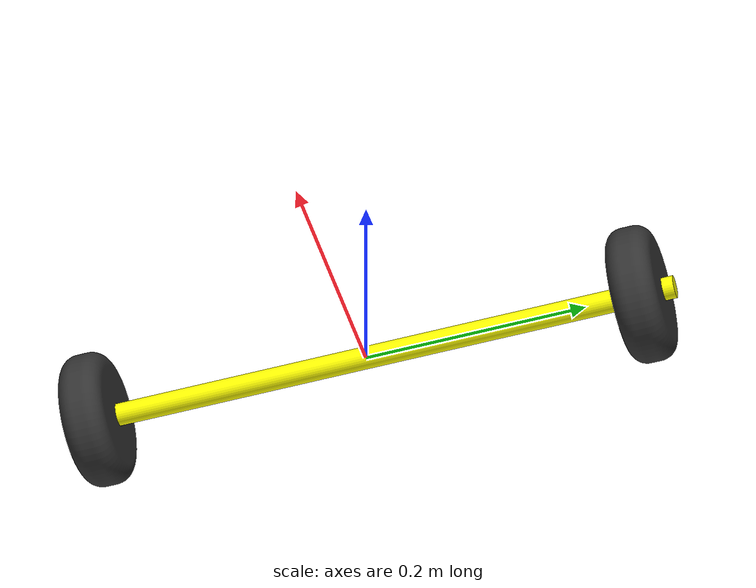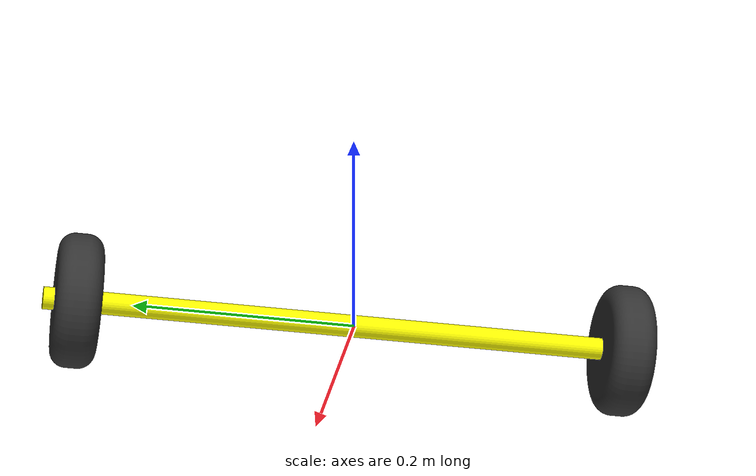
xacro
<?xml version="1.0" encoding="utf-8"?>
<robot xmlns:xacro="http://www.ros.org/wiki/xacro" name="diff">
	<xacro:include filename="$(find transbot_description)/urdf/mobilebase_diffdrive_6wheels_ltype_csuspp/doublebar/diff.urdf.xacro"></xacro:include>
	<xacro:diff prefix="" name=""></xacro:diff>
</robot>

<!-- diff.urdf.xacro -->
<robot xmlns:xacro="http://www.ros.org/wiki/xacro" name="diff">
	<xacro:macro name="diff" params="prefix='' name='diff' suffix=''">
		<link name="${prefix}${name}${suffix}_">
			<inertial density="7850">
				<origin xyz="-4.068478350109102e-11 -1.8579384465498233e-09 1.9870914441743804e-10" rpy="0 0 0"></origin>
				<mass value="0.17464581954603395"></mass>
				<inertia ixx="0.004568412068787589" ixy="1.320144666685382e-20" ixz="7.517120943432255e-16" iyy="8.668682956643647e-06" iyz="-2.0724169574074076e-13" izz="0.00456841207257715"></inertia>
			</inertial>
			<visual>
				<geometry>
					<mesh filename="package://transbot_description/meshes/mobilebase_diffdrive_6wheels_ltype_csuspp/doublebar/diff/_.stl" scale="1e-3 1e-3 1e-3"></mesh>
				</geometry>
				<material name="">
					<color rgba="1 1 0 1"></color>
				</material>
			</visual>
			<collision>
				<geometry>
					<mesh filename="package://transbot_description/meshes/mobilebase_diffdrive_6wheels_ltype_csuspp/doublebar/diff/_.stl" scale="1e-3 1e-3 1e-3"></mesh>
				</geometry>
			</collision>
		</link>
		<xacro:include filename="$(find transbot_description)/urdf/mobilebase_diffdrive_6wheels_ltype_csuspp/doublebar/diff/wheel.urdf.xacro"></xacro:include>
		<joint name="j/${prefix}${name}${suffix}wheel0" type="continuous">
			<origin xyz="0.0 -0.25 0.0" rpy="-1.5707963267948966 0.0 0.0"></origin>
			<parent link="${prefix}${name}${suffix}_"></parent>
			<child link="${prefix}${name}${suffix}wheel0"></child>
			<axis xyz="0 0 1"></axis>
		</joint>
		<joint name="j/${prefix}${name}${suffix}wheel1" type="continuous">
			<origin xyz="0.0 0.25 0.0" rpy="-1.5707963267948966 0.0 0.0"></origin>
			<parent link="${prefix}${name}${suffix}_"></parent>
			<child link="${prefix}${name}${suffix}wheel1"></child>
			<axis xyz="0 0 1"></axis>
		</joint>
		<xacro:wheel prefix="${prefix}${name}${suffix}" suffix="0"></xacro:wheel>
		<xacro:wheel prefix="${prefix}${name}${suffix}" suffix="1"></xacro:wheel>
	</xacro:macro>
</robot>

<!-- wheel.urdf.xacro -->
<robot xmlns:xacro="http://www.ros.org/wiki/xacro" name="wheel">
	<xacro:macro name="wheel" params="prefix='' name='wheel' suffix=''">
		<link name="${prefix}${name}${suffix}">
			<inertial density="2500">
				<origin xyz="1.5806070609371153e-09 1.4316135311553461e-09 1.5819836565310336e-09" rpy="0 0 0"></origin>
				<mass value="0.40324951987713575"></mass>
				<inertia ixx="0.0003983033404134991" ixy="-1.6095911767625574e-12" ixz="-1.0528604933629682e-12" iyy="0.0003983025825012475" iyz="-6.207533573160245e-12" izz="0.0006993442790796186"></inertia>
			</inertial>
			<visual>
				<geometry>
					<mesh filename="package://transbot_description/meshes/mobilebase_diffdrive_6wheels_ltype_csuspp/doublebar/diff/wheel.stl" scale="1e-3 1e-3 1e-3"></mesh>
				</geometry>
				<material name="">
					<color rgba="0.2 0.2 0.2 1"></color>
				</material>
			</visual>
			<collision>
				<geometry>
					<mesh filename="package://transbot_description/meshes/mobilebase_diffdrive_6wheels_ltype_csuspp/doublebar/diff/wheel.stl" scale="1e-3 1e-3 1e-3"></mesh>
				</geometry>
			</collision>
		</link>
	</xacro:macro>
</robot>
